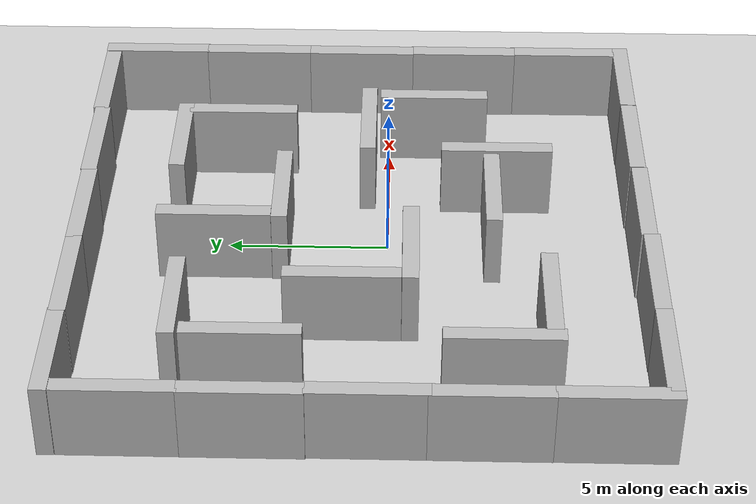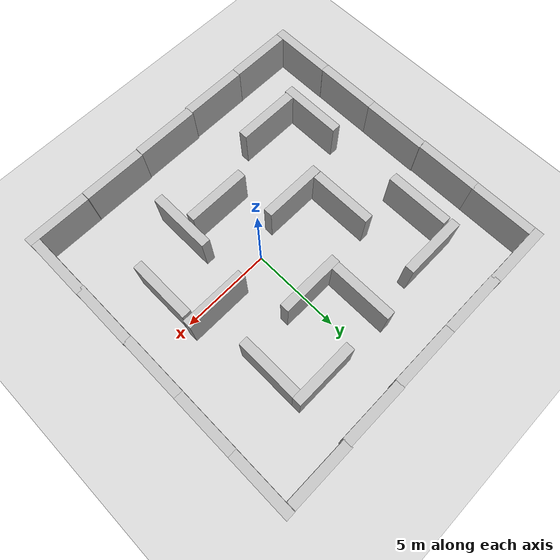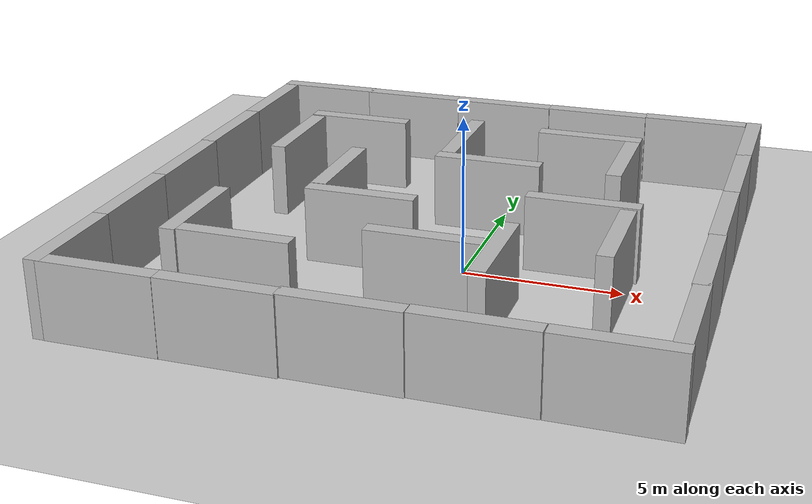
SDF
<sdf version="1.6">
 <world name="default">
  <light name="sun" type="directional">
   <pose>0 0 10 0 -0 0</pose>
   <diffuse>0.8 0.8 0.8 1</diffuse>
   <specular>0.1 0.1 0.1 1</specular>
   <attenuation>
    <range>1000</range>
    <constant>0.9</constant>
    <linear>0.01</linear>
    <quadratic>0.001</quadratic>
   </attenuation>
   <direction>-0.5 0.5 -1</direction>
  </light>
  <model name="ground_plane">
   <static>1</static>
   <link name="link">
    <collision name="collision">
     <geometry><plane><normal>0 0 1</normal><size>100 100</size></plane></geometry>
     <surface><friction><ode><mu>100</mu><mu2>50</mu2></ode></friction></surface>
    </collision>
    <visual name="visual">
     <cast_shadows>0</cast_shadows>
     <geometry><plane><normal>0 0 1</normal><size>100 100</size></plane></geometry>
     <material>
      <script><uri>file://media/materials/scripts/gazebo.material</uri><name>Gazebo/Grey</name></script>
     </material>
    </visual>
   </link>
  </model>
  <gravity>0 0 -9.8</gravity>
  <magnetic_field>6e-06 2.3e-05 -4.2e-05</magnetic_field>
  <atmosphere type="adiabatic"/>
  <physics name="default_physics" default="0" type="ode">
   <max_step_size>0.001</max_step_size>
   <real_time_factor>1</real_time_factor>
   <real_time_update_rate>1000</real_time_update_rate>
  </physics>
  <scene><ambient>0.4 0.4 0.4 1</ambient><background>0.7 0.7 0.7 1</background><shadows>1</shadows></scene>
  <spherical_coordinates>
   <surface_model>EARTH_WGS84</surface_model>
   <latitude_deg>0</latitude_deg>
   <longitude_deg>0</longitude_deg>
   <elevation>0</elevation>
   <heading_deg>0</heading_deg>
  </spherical_coordinates>
  <model name="mywall_net0">
   <static>1</static>
   <link name="link">
    <pose>0 0 1.4 0 -0 0</pose>
    <collision name="collision"><geometry><box><size>3.5 0.5 2.4</size></box></geometry></collision>
    <visual name="visual">
     <cast_shadows>0</cast_shadows>
     <geometry><box><size>3.5 0.5 2.4</size></box></geometry>
     <material>
      <script>
       <uri>model://mywall_net0/materials/scripts</uri>
       <uri>model://mywall_net0/materials/textures</uri>
       <name>vrc/mywall_net0</name>
      </script>
     </material>
    </visual>
   </link>
   <pose>-0.138818 3.28199 0 0 -0 0</pose>
  </model>
  <model name="mywall_net6">
   <static>1</static>
   <link name="link">
    <pose>0 0 1.4 0 -0 0</pose>
    <collision name="collision"><geometry><box><size>3.5 0.5 2.4</size></box></geometry></collision>
    <visual name="visual">
     <cast_shadows>0</cast_shadows>
     <geometry><box><size>3.5 0.5 2.4</size></box></geometry>
     <material>
      <script>
       <uri>model://mywall_net6/materials/scripts</uri>
       <uri>model://mywall_net6/materials/textures</uri>
       <name>vrc/mywall_net6</name>
      </script>
     </material>
    </visual>
   </link>
   <pose>-0.174386 -3.2394 0 0 -0 0</pose>
  </model>
  <model name="mywall_net7_clone">
   <static>1</static>
   <link name="link">
    <pose>0 0 1.4 0 -0 0</pose>
    <collision name="collision"><geometry><box><size>3.5 0.5 2.4</size></box></geometry></collision>
    <visual name="visual">
     <cast_shadows>0</cast_shadows>
     <geometry><box><size>3.5 0.5 2.4</size></box></geometry>
     <material>
      <script>
       <uri>model://mywall_net7/materials/scripts</uri>
       <uri>model://mywall_net7/materials/textures</uri>
       <name>vrc/mywall_net7</name>
      </script>
     </material>
    </visual>
   </link>
   <pose>-4.52922 1.29935 0 0 -0 1.57</pose>
  </model>
  <model name="mywall_net8">
   <static>1</static>
   <link name="link">
    <pose>0 0 1.4 0 -0 0</pose>
    <collision name="collision"><geometry><box><size>3.5 0.5 2.4</size></box></geometry></collision>
    <visual name="visual">
     <cast_shadows>0</cast_shadows>
     <geometry><box><size>3.5 0.5 2.4</size></box></geometry>
     <material>
      <script>
       <uri>model://mywall_net8/materials/scripts</uri>
       <uri>model://mywall_net8/materials/textures</uri>
       <name>vrc/mywall_net8</name>
      </script>
     </material>
    </visual>
   </link>
   <pose>-3.02336 -0.716834 0 0 -0 0</pose>
  </model>
  <model name="mywall_net9_clone_0">
   <static>1</static>
   <link name="link">
    <pose>0 0 1.4 0 -0 0</pose>
    <collision name="collision"><geometry><box><size>3.5 0.5 2.4</size></box></geometry></collision>
    <visual name="visual">
     <cast_shadows>0</cast_shadows>
     <geometry><box><size>3.5 0.5 2.4</size></box></geometry>
     <material>
      <script>
       <uri>model://mywall_net9/materials/scripts</uri>
       <uri>model://mywall_net9/materials/textures</uri>
       <name>vrc/mywall_net9</name>
      </script>
     </material>
    </visual>
   </link>
   <pose>-1.60065 5.28622 0 0 -0 1.57</pose>
  </model>
  <model name="mywall_net1">
   <static>1</static>
   <link name="link">
    <pose>0 0 1.4 0 -0 0</pose>
    <collision name="collision"><geometry><box><size>3.5 0.5 2.4</size></box></geometry></collision>
    <visual name="visual">
     <cast_shadows>0</cast_shadows>
     <geometry><box><size>3.5 0.5 2.4</size></box></geometry>
     <material>
      <script>
       <uri>model://mywall_net1/materials/scripts</uri>
       <uri>model://mywall_net1/materials/textures</uri>
       <name>vrc/mywall_net1</name>
      </script>
     </material>
    </visual>
   </link>
   <pose>-1.2853 9.33256 0 0 -0 0</pose>
  </model>
  <model name="mywall_net7_0">
   <static>1</static>
   <link name="link">
    <pose>0 0 1.4 0 -0 0</pose>
    <collision name="collision"><geometry><box><size>3.5 0.5 2.4</size></box></geometry></collision>
    <visual name="visual">
     <cast_shadows>0</cast_shadows>
     <geometry><box><size>3.5 0.5 2.4</size></box></geometry>
     <material>
      <script>
       <uri>model://mywall_net7/materials/scripts</uri>
       <uri>model://mywall_net7/materials/textures</uri>
       <name>vrc/mywall_net7</name>
      </script>
     </material>
    </visual>
   </link>
   <pose>-4.72539 9.32953 0 0 -0 0</pose>
  </model>
  <model name="mywall_net8_0">
   <static>1</static>
   <link name="link">
    <pose>0 0 1.4 0 -0 0</pose>
    <collision name="collision"><geometry><box><size>3.5 0.5 2.4</size></box></geometry></collision>
    <visual name="visual">
     <cast_shadows>0</cast_shadows>
     <geometry><box><size>3.5 0.5 2.4</size></box></geometry>
     <material>
      <script>
       <uri>model://mywall_net8/materials/scripts</uri>
       <uri>model://mywall_net8/materials/textures</uri>
       <name>vrc/mywall_net8</name>
      </script>
     </material>
    </visual>
   </link>
   <pose>2.19723 9.36333 0 0 -0 0</pose>
  </model>
  <model name="mywall_net11_0">
   <static>1</static>
   <link name="link">
    <pose>0 0 1.4 0 -0 0</pose>
    <collision name="collision"><geometry><box><size>3.5 0.5 2.4</size></box></geometry></collision>
    <visual name="visual">
     <cast_shadows>0</cast_shadows>
     <geometry><box><size>3.5 0.5 2.4</size></box></geometry>
     <material>
      <script>
       <uri>model://mywall_net11/materials/scripts</uri>
       <uri>model://mywall_net11/materials/textures</uri>
       <name>vrc/mywall_net11</name>
      </script>
     </material>
    </visual>
   </link>
   <pose>-8.12202 9.35336 0 0 -0 0</pose>
  </model>
  <model name="mywall_net7_clone_0">
   <static>1</static>
   <link name="link">
    <pose>0 0 1.4 0 -0 0</pose>
    <collision name="collision"><geometry><box><size>3.5 0.5 2.4</size></box></geometry></collision>
    <visual name="visual">
     <cast_shadows>0</cast_shadows>
     <geometry><box><size>3.5 0.5 2.4</size></box></geometry>
     <material>
      <script>
       <uri>model://mywall_net7/materials/scripts</uri>
       <uri>model://mywall_net7/materials/textures</uri>
       <name>vrc/mywall_net7</name>
      </script>
     </material>
    </visual>
   </link>
   <pose>-9.61849 7.34509 0 0 -0 1.57</pose>
  </model>
  <model name="mywall_net10_clone">
   <static>1</static>
   <link name="link">
    <pose>0 0 1.4 0 -0 0</pose>
    <collision name="collision"><geometry><box><size>3.5 0.5 2.4</size></box></geometry></collision>
    <visual name="visual">
     <cast_shadows>0</cast_shadows>
     <geometry><box><size>3.5 0.5 2.4</size></box></geometry>
     <material>
      <script>
       <uri>model://mywall_net10/materials/scripts</uri>
       <uri>model://mywall_net10/materials/textures</uri>
       <name>vrc/mywall_net10</name>
      </script>
     </material>
    </visual>
   </link>
   <pose>-9.62552 3.89525 0 0 -0 1.57</pose>
  </model>
  <model name="mywall_net0_clone_clone">
   <static>1</static>
   <link name="link">
    <pose>0 0 1.4 0 -0 0</pose>
    <collision name="collision"><geometry><box><size>3.5 0.5 2.4</size></box></geometry></collision>
    <visual name="visual">
     <cast_shadows>0</cast_shadows>
     <geometry><box><size>3.5 0.5 2.4</size></box></geometry>
     <material>
      <script>
       <uri>model://mywall_net0/materials/scripts</uri>
       <uri>model://mywall_net0/materials/textures</uri>
       <name>vrc/mywall_net0</name>
      </script>
     </material>
    </visual>
   </link>
   <pose>-9.59123 0.43811 0 0 -0 1.57</pose>
  </model>
  <model name="mywall_net0_clone_clone_0">
   <static>1</static>
   <link name="link">
    <pose>0 0 1.4 0 -0 0</pose>
    <collision name="collision"><geometry><box><size>3.5 0.5 2.4</size></box></geometry></collision>
    <visual name="visual">
     <cast_shadows>0</cast_shadows>
     <geometry><box><size>3.5 0.5 2.4</size></box></geometry>
     <material>
      <script>
       <uri>model://mywall_net0/materials/scripts</uri>
       <uri>model://mywall_net0/materials/textures</uri>
       <name>vrc/mywall_net0</name>
      </script>
     </material>
    </visual>
   </link>
   <pose>-9.59808 -2.95533 0 0 -0 1.57</pose>
  </model>
  <model name="mywall0_clone">
   <static>1</static>
   <link name="link">
    <pose>0 0 1.4 0 -0 0</pose>
    <collision name="collision"><geometry><box><size>3.5 0.5 2.4</size></box></geometry></collision>
    <visual name="visual">
     <cast_shadows>0</cast_shadows>
     <geometry><box><size>3.5 0.5 2.4</size></box></geometry>
     <material>
      <script>
       <uri>model://mywall0/materials/scripts</uri>
       <uri>model://mywall0/materials/textures</uri>
       <name>vrc/mywall0</name>
      </script>
     </material>
    </visual>
   </link>
   <pose>5.65466 9.42448 0 0 -0 0</pose>
  </model>
  <model name="mywall1_clone">
   <static>1</static>
   <link name="link">
    <pose>0 0 1.4 0 -0 0</pose>
    <collision name="collision"><geometry><box><size>3.5 0.5 2.4</size></box></geometry></collision>
    <visual name="visual">
     <cast_shadows>0</cast_shadows>
     <geometry><box><size>3.5 0.5 2.4</size></box></geometry>
     <material>
      <script>
       <uri>model://mywall1/materials/scripts</uri>
       <uri>model://mywall1/materials/textures</uri>
       <name>vrc/mywall1</name>
      </script>
     </material>
    </visual>
   </link>
   <pose>7.67414 7.93993 0 0 -0 1.57</pose>
  </model>
  <model name="mywall_net0_clone_clone_1">
   <static>1</static>
   <link name="link">
    <pose>0 0 1.4 0 -0 0</pose>
    <collision name="collision"><geometry><box><size>3.5 0.5 2.4</size></box></geometry></collision>
    <visual name="visual">
     <cast_shadows>0</cast_shadows>
     <geometry><box><size>3.5 0.5 2.4</size></box></geometry>
     <material>
      <script>
       <uri>model://mywall_net0/materials/scripts</uri>
       <uri>model://mywall_net0/materials/textures</uri>
       <name>vrc/mywall_net0</name>
      </script>
     </material>
    </visual>
   </link>
   <pose>7.66713 4.49535 0 0 -0 1.57</pose>
  </model>
  <model name="mywall_net9_clone">
   <static>1</static>
   <link name="link">
    <pose>0 0 1.4 0 -0 0</pose>
    <collision name="collision"><geometry><box><size>3.5 0.5 2.4</size></box></geometry></collision>
    <visual name="visual">
     <cast_shadows>0</cast_shadows>
     <geometry><box><size>3.5 0.5 2.4</size></box></geometry>
     <material>
      <script>
       <uri>model://mywall_net9/materials/scripts</uri>
       <uri>model://mywall_net9/materials/textures</uri>
       <name>vrc/mywall_net9</name>
      </script>
     </material>
    </visual>
   </link>
   <pose>7.65998 0.995143 0 0 -0 1.57</pose>
  </model>
  <model name="mywall_net7_clone_1">
   <static>1</static>
   <link name="link">
    <pose>0 0 1.4 0 -0 0</pose>
    <collision name="collision"><geometry><box><size>3.5 0.5 2.4</size></box></geometry></collision>
    <visual name="visual">
     <cast_shadows>0</cast_shadows>
     <geometry><box><size>3.5 0.5 2.4</size></box></geometry>
     <material>
      <script>
       <uri>model://mywall_net7/materials/scripts</uri>
       <uri>model://mywall_net7/materials/textures</uri>
       <name>vrc/mywall_net7</name>
      </script>
     </material>
    </visual>
   </link>
   <pose>7.68045 -2.44927 0 0 -0 1.57</pose>
  </model>
  <model name="mywall_net10_clone_0">
   <static>1</static>
   <link name="link">
    <pose>0 0 1.4 0 -0 0</pose>
    <collision name="collision"><geometry><box><size>3.5 0.5 2.4</size></box></geometry></collision>
    <visual name="visual">
     <cast_shadows>0</cast_shadows>
     <geometry><box><size>3.5 0.5 2.4</size></box></geometry>
     <material>
      <script>
       <uri>model://mywall_net10/materials/scripts</uri>
       <uri>model://mywall_net10/materials/textures</uri>
       <name>vrc/mywall_net10</name>
      </script>
     </material>
    </visual>
   </link>
   <pose>7.70114 -5.8102 0 0 -0 1.57</pose>
  </model>
  <model name="mywall0_clone_0">
   <static>1</static>
   <link name="link">
    <pose>0 0 1.4 0 -0 0</pose>
    <collision name="collision"><geometry><box><size>3.5 0.5 2.4</size></box></geometry></collision>
    <visual name="visual">
     <cast_shadows>0</cast_shadows>
     <geometry><box><size>3.5 0.5 2.4</size></box></geometry>
     <material>
      <script>
       <uri>model://mywall0/materials/scripts</uri>
       <uri>model://mywall0/materials/textures</uri>
       <name>vrc/mywall0</name>
      </script>
     </material>
    </visual>
   </link>
   <pose>6.22958 -7.78732 0 0 -0 0</pose>
  </model>
  <model name="mywall_net6_clone">
   <static>1</static>
   <link name="link">
    <pose>0 0 1.4 0 -0 0</pose>
    <collision name="collision"><geometry><box><size>3.5 0.5 2.4</size></box></geometry></collision>
    <visual name="visual">
     <cast_shadows>0</cast_shadows>
     <geometry><box><size>3.5 0.5 2.4</size></box></geometry>
     <material>
      <script>
       <uri>model://mywall_net6/materials/scripts</uri>
       <uri>model://mywall_net6/materials/textures</uri>
       <name>vrc/mywall_net6</name>
      </script>
     </material>
    </visual>
   </link>
   <pose>2.70307 -7.7986 0 0 -0 0</pose>
  </model>
  <model name="mywall_net11_clone_clone">
   <static>1</static>
   <link name="link">
    <pose>0 0 1.4 0 -0 0</pose>
    <collision name="collision"><geometry><box><size>3.5 0.5 2.4</size></box></geometry></collision>
    <visual name="visual">
     <cast_shadows>0</cast_shadows>
     <geometry><box><size>3.5 0.5 2.4</size></box></geometry>
     <material>
      <script>
       <uri>model://mywall_net11/materials/scripts</uri>
       <uri>model://mywall_net11/materials/textures</uri>
       <name>vrc/mywall_net11</name>
      </script>
     </material>
    </visual>
   </link>
   <pose>-0.809469 -7.83836 0 0 -0 0</pose>
  </model>
  <model name="mywall_net0_clone_0">
   <static>1</static>
   <link name="link">
    <pose>0 0 1.4 0 -0 0</pose>
    <collision name="collision"><geometry><box><size>3.5 0.5 2.4</size></box></geometry></collision>
    <visual name="visual">
     <cast_shadows>0</cast_shadows>
     <geometry><box><size>3.5 0.5 2.4</size></box></geometry>
     <material>
      <script>
       <uri>model://mywall_net0/materials/scripts</uri>
       <uri>model://mywall_net0/materials/textures</uri>
       <name>vrc/mywall_net0</name>
      </script>
     </material>
    </visual>
   </link>
   <pose>-4.25175 -7.90559 0 0 -0 0</pose>
  </model>
  <model name="mywall_net7_clone_2">
   <static>1</static>
   <link name="link">
    <pose>0 0 1.4 0 -0 0</pose>
    <collision name="collision"><geometry><box><size>3.5 0.5 2.4</size></box></geometry></collision>
    <visual name="visual">
     <cast_shadows>0</cast_shadows>
     <geometry><box><size>3.5 0.5 2.4</size></box></geometry>
     <material>
      <script>
       <uri>model://mywall_net7/materials/scripts</uri>
       <uri>model://mywall_net7/materials/textures</uri>
       <name>vrc/mywall_net7</name>
      </script>
     </material>
    </visual>
   </link>
   <pose>-9.59204 -6.40902 0 0 -0 1.57</pose>
  </model>
  <model name="mywall1_clone_0">
   <static>1</static>
   <link name="link">
    <pose>0 0 1.4 0 -0 0</pose>
    <collision name="collision"><geometry><box><size>3.5 0.5 2.4</size></box></geometry></collision>
    <visual name="visual">
     <cast_shadows>0</cast_shadows>
     <geometry><box><size>3.5 0.5 2.4</size></box></geometry>
     <material>
      <script>
       <uri>model://mywall1/materials/scripts</uri>
       <uri>model://mywall1/materials/textures</uri>
       <name>vrc/mywall1</name>
      </script>
     </material>
    </visual>
   </link>
   <pose>-7.73505 -7.91701 0 0 -0 0</pose>
  </model>
  <model name="mywall_net7_clone_3">
   <static>1</static>
   <link name="link">
    <pose>0 0 1.4 0 -0 0</pose>
    <collision name="collision"><geometry><box><size>3.5 0.5 2.4</size></box></geometry></collision>
    <visual name="visual">
     <cast_shadows>0</cast_shadows>
     <geometry><box><size>3.5 0.5 2.4</size></box></geometry>
     <material>
      <script>
       <uri>model://mywall_net7/materials/scripts</uri>
       <uri>model://mywall_net7/materials/textures</uri>
       <name>vrc/mywall_net7</name>
      </script>
     </material>
    </visual>
   </link>
   <pose>3.99108 4.76028 0 0 -0 1.57</pose>
  </model>
  <model name="mywall_net8_0_clone">
   <static>1</static>
   <link name="link">
    <pose>0 0 1.4 0 -0 0</pose>
    <collision name="collision"><geometry><box><size>3.5 0.5 2.4</size></box></geometry></collision>
    <visual name="visual">
     <cast_shadows>0</cast_shadows>
     <geometry><box><size>3.5 0.5 2.4</size></box></geometry>
     <material>
      <script>
       <uri>model://mywall_net8/materials/scripts</uri>
       <uri>model://mywall_net8/materials/textures</uri>
       <name>vrc/mywall_net8</name>
      </script>
     </material>
    </visual>
   </link>
   <pose>2.4928 6.6455 0 0 -0 0</pose>
  </model>
  <model name="mywall0_clone_1">
   <static>1</static>
   <link name="link">
    <pose>0 0 1.4 0 -0 0</pose>
    <collision name="collision"><geometry><box><size>3.5 0.5 2.4</size></box></geometry></collision>
    <visual name="visual">
     <cast_shadows>0</cast_shadows>
     <geometry><box><size>3.5 0.5 2.4</size></box></geometry>
     <material>
      <script>
       <uri>model://mywall0/materials/scripts</uri>
       <uri>model://mywall0/materials/textures</uri>
       <name>vrc/mywall0</name>
      </script>
     </material>
    </visual>
   </link>
   <pose>-5.65586 6.15272 0 0 -0 0</pose>
  </model>
  <model name="mywall_net10_clone_0_clone">
   <static>1</static>
   <link name="link">
    <pose>0 0 1.4 0 -0 0</pose>
    <collision name="collision"><geometry><box><size>3.5 0.5 2.4</size></box></geometry></collision>
    <visual name="visual">
     <cast_shadows>0</cast_shadows>
     <geometry><box><size>3.5 0.5 2.4</size></box></geometry>
     <material>
      <script>
       <uri>model://mywall_net10/materials/scripts</uri>
       <uri>model://mywall_net10/materials/textures</uri>
       <name>vrc/mywall_net10</name>
      </script>
     </material>
    </visual>
   </link>
   <pose>-7.13582 4.07359 0 0 -0 1.57</pose>
  </model>
  <model name="mywall_net11_clone_clone_0">
   <static>1</static>
   <link name="link">
    <pose>0 0 1.4 0 -0 0</pose>
    <collision name="collision"><geometry><box><size>3.5 0.5 2.4</size></box></geometry></collision>
    <visual name="visual">
     <cast_shadows>0</cast_shadows>
     <geometry><box><size>3.5 0.5 2.4</size></box></geometry>
     <material>
      <script>
       <uri>model://mywall_net11/materials/scripts</uri>
       <uri>model://mywall_net11/materials/textures</uri>
       <name>vrc/mywall_net11</name>
      </script>
     </material>
    </visual>
   </link>
   <pose>3.55633 0.666809 0 0 -0 0</pose>
  </model>
  <model name="mywall_net0_clone_clone_clone">
   <static>1</static>
   <link name="link">
    <pose>0 0 1.4 0 -0 0</pose>
    <collision name="collision"><geometry><box><size>3.5 0.5 2.4</size></box></geometry></collision>
    <visual name="visual">
     <cast_shadows>0</cast_shadows>
     <geometry><box><size>3.5 0.5 2.4</size></box></geometry>
     <material>
      <script>
       <uri>model://mywall_net0/materials/scripts</uri>
       <uri>model://mywall_net0/materials/textures</uri>
       <name>vrc/mywall_net0</name>
      </script>
     </material>
    </visual>
   </link>
   <pose>4.97026 -1.45099 0 0 -0 1.57</pose>
  </model>
  <model name="mywall1_clone_clone">
   <static>1</static>
   <link name="link">
    <pose>0 0 1.4 0 -0 0</pose>
    <collision name="collision"><geometry><box><size>3.5 0.5 2.4</size></box></geometry></collision>
    <visual name="visual">
     <cast_shadows>0</cast_shadows>
     <geometry><box><size>3.5 0.5 2.4</size></box></geometry>
     <material>
      <script>
       <uri>model://mywall1/materials/scripts</uri>
       <uri>model://mywall1/materials/textures</uri>
       <name>vrc/mywall1</name>
      </script>
     </material>
    </visual>
   </link>
   <pose>-7.20466 -3.36916 0 0 -0 1.57</pose>
  </model>
  <model name="mywall_net11_clone_clone_1">
   <static>1</static>
   <link name="link">
    <pose>0 0 1.4 0 -0 0</pose>
    <collision name="collision"><geometry><box><size>3.5 0.5 2.4</size></box></geometry></collision>
    <visual name="visual">
     <cast_shadows>0</cast_shadows>
     <geometry><box><size>3.5 0.5 2.4</size></box></geometry>
     <material>
      <script>
       <uri>model://mywall_net11/materials/scripts</uri>
       <uri>model://mywall_net11/materials/textures</uri>
       <name>vrc/mywall_net11</name>
      </script>
     </material>
    </visual>
   </link>
   <pose>-5.23776 -4.79638 0 0 -0 0</pose>
  </model>
  <model name="mywall_net0_clone_clone_1_clone">
   <static>1</static>
   <link name="link">
    <pose>0 0 1.4 0 -0 0</pose>
    <collision name="collision"><geometry><box><size>3.5 0.5 2.4</size></box></geometry></collision>
    <visual name="visual">
     <cast_shadows>0</cast_shadows>
     <geometry><box><size>3.5 0.5 2.4</size></box></geometry>
     <material>
      <script>
       <uri>model://mywall_net0/materials/scripts</uri>
       <uri>model://mywall_net0/materials/textures</uri>
       <name>vrc/mywall_net0</name>
      </script>
     </material>
    </visual>
   </link>
   <pose>1.95891 -3.427 0 0 -0 1.57</pose>
  </model>
 </world>
</sdf>
